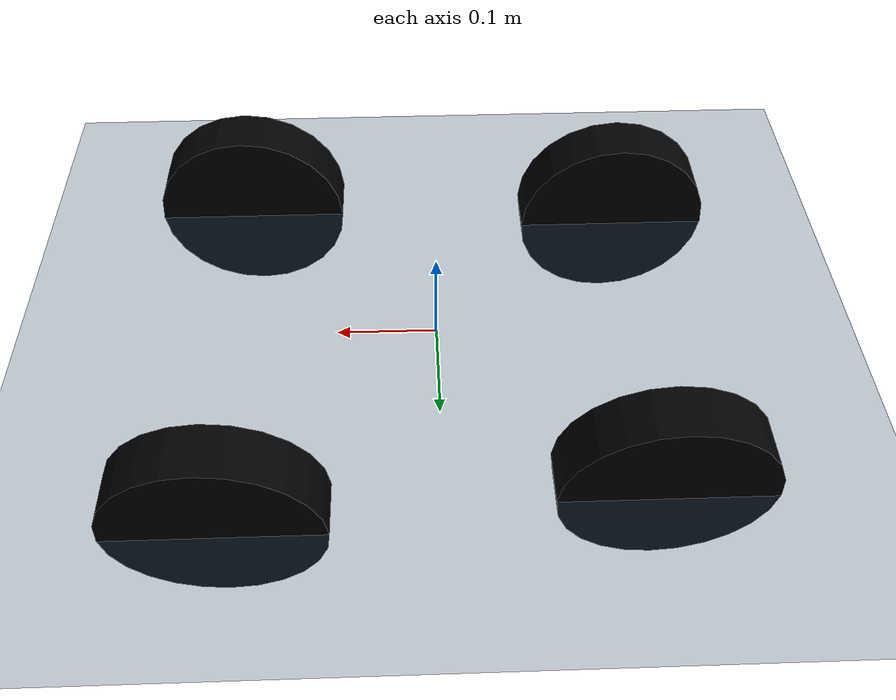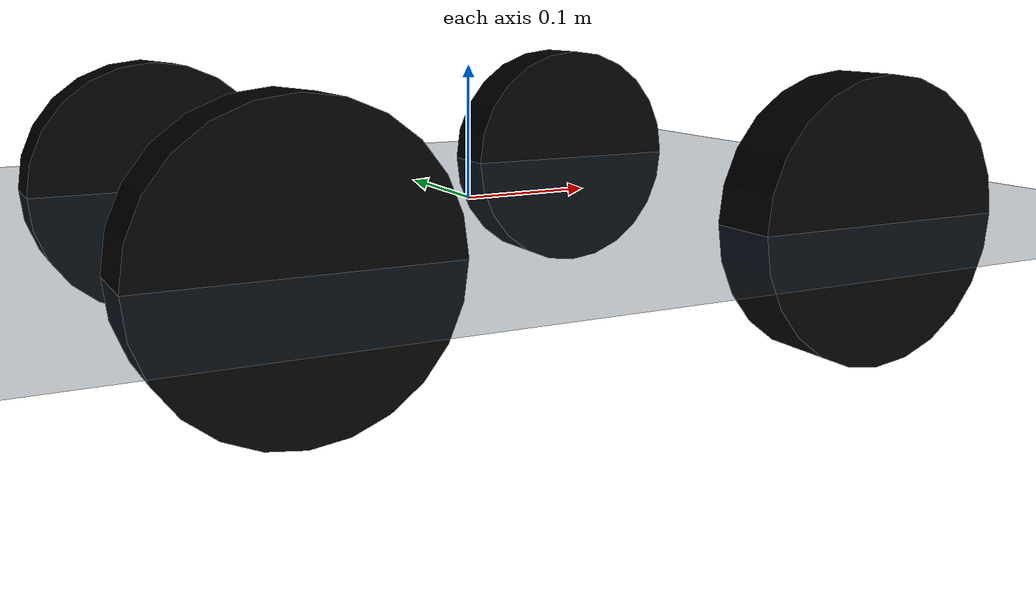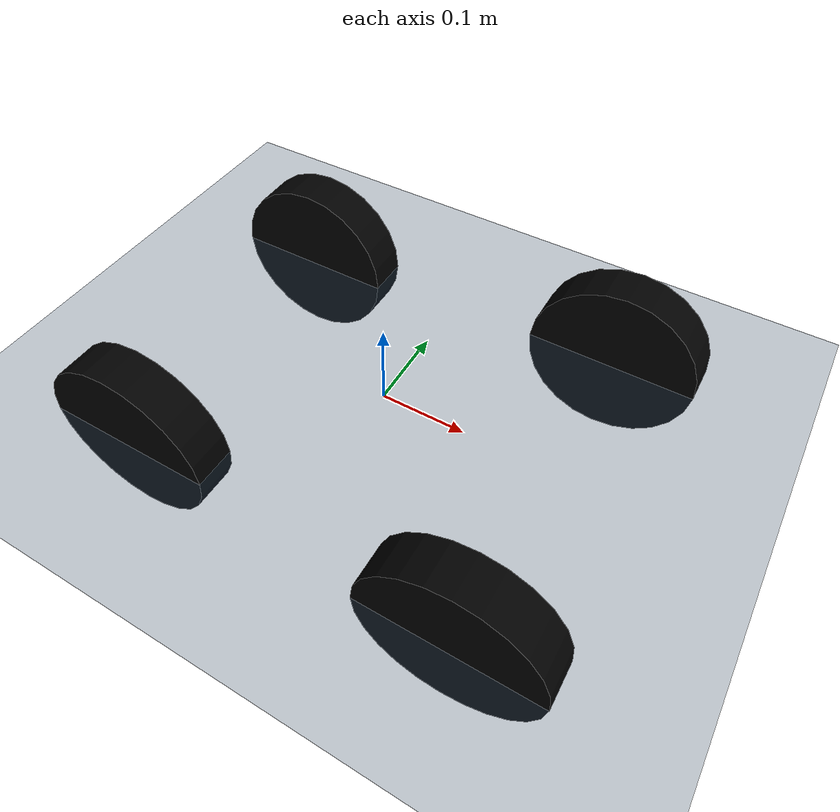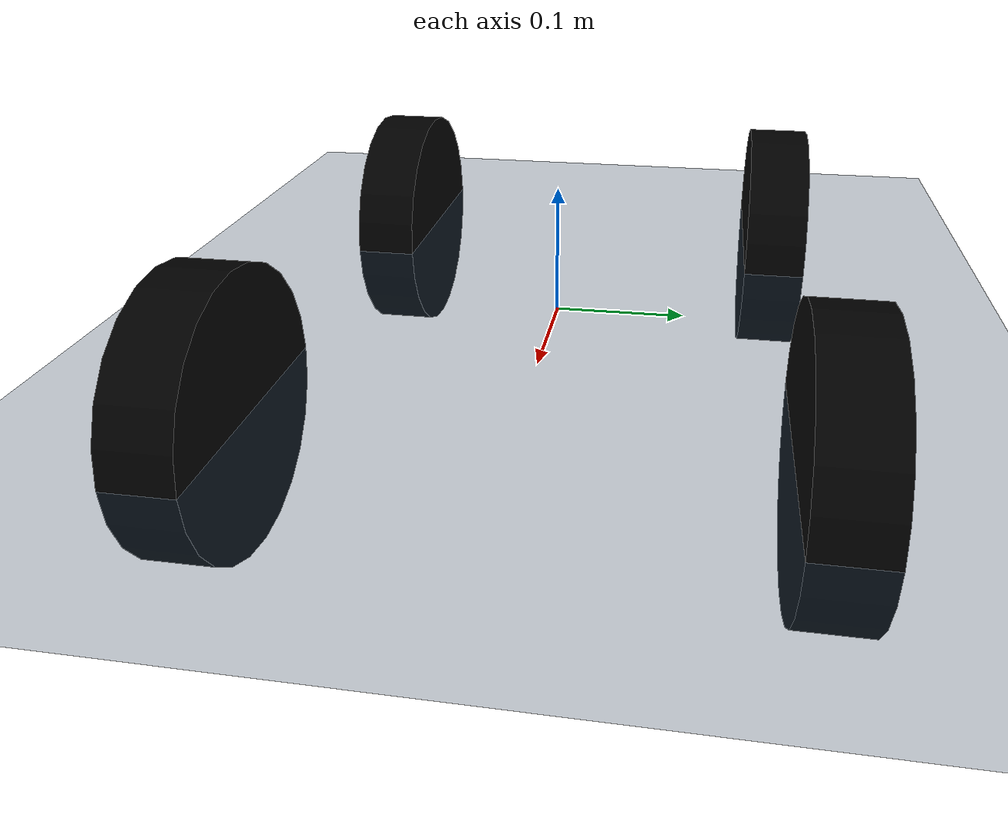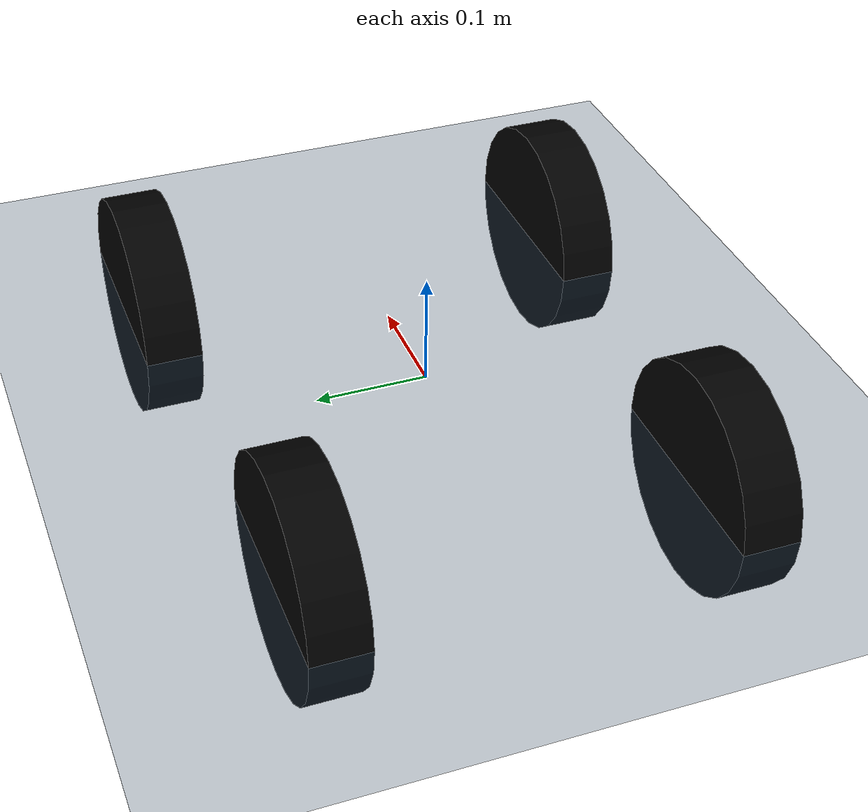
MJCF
<mujoco model="simplecar">
  <compiler angle="radian"/>
  <option gravity="0 0 -9.81"/>

  <asset>
    <texture type="skybox" builtin="gradient" rgb1="0.3 0.5 0.7" rgb2="0 0 0" width="512" height="512"/>
    <texture name="texplane" type="2d" builtin="checker" rgb1="0.2 0.3 0.4" rgb2="0.1 0.2 0.3" width="512" height="512" mark="cross" markrgb=".8 .8 .8"/>
    <material name="matplane" texture="texplane" texrepeat="1 1" texuniform="true" reflectance="0.2"/>
  </asset>

  <worldbody>
    <!-- floor -->
    <geom name="floor" pos="0 0 0" size="100 100 0.1" type="plane" material="matplane"/>

    <body name="left_hinge" pos="0.2 0 0">
      <inertial pos="0 0 0" mass="0.01" diaginertia="5e-06 5e-06 5e-06"/>
      <joint name="base_to_left_hinge" pos="0 0 0" axis="0 0 1" range="-0.5 0.5" actuatorfrcrange="-100 100"/>
      <body name="left_front_wheel" pos="0 0.2 0">
        <inertial pos="0 0 0" mass="0.3" diaginertia="0.4 0.4 0.2"/>
        <joint name="left_hinge_to_left_front_wheel" pos="0 0 0" axis="0 1 0"/>
        <geom size="0.1 0.025" quat="0.500023 0.5 0.5 -0.499977" type="cylinder" rgba="0 0 0 1"/>
      </body>
    </body>
    <body name="right_hinge" pos="0.2 0 0">
      <inertial pos="0 0 0" mass="0.01" diaginertia="5e-06 5e-06 5e-06"/>
      <joint name="base_to_right_hinge" pos="0 0 0" axis="0 0 1" range="-0.5 0.5" actuatorfrcrange="-100 100"/>
      <body name="right_front_wheel" pos="0 -0.2 0">
        <inertial pos="0 0 0" mass="0.3" diaginertia="0.4 0.4 0.2"/>
        <joint name="right_hinge_to_right_front_wheel" pos="0 0 0" axis="0 1 0"/>
        <geom size="0.1 0.025" quat="0.500023 -0.5 -0.5 -0.499977" type="cylinder" rgba="0 0 0 1"/>
      </body>
    </body>
    <body name="left_back_wheel" pos="-0.2 0.175 0">
      <inertial pos="0 0 0" mass="0.3" diaginertia="0.4 0.4 0.2"/>
      <joint name="base_to_left_back_wheel" pos="0 0 0" axis="0 1 0"/>
      <geom size="0.1 0.025" quat="0.500023 0.5 0.5 -0.499977" type="cylinder" rgba="0 0 0 1"/>
    </body>
    <body name="right_back_wheel" pos="-0.2 -0.175 0">
      <inertial pos="0 0 0" mass="0.3" diaginertia="0.4 0.4 0.2"/>
      <joint name="base_to_right_back_wheel" pos="0 0 0" axis="0 1 0"/>
      <geom size="0.1 0.025" quat="0.500023 -0.5 -0.5 -0.499977" type="cylinder" rgba="0 0 0 1"/>
    </body>
  </worldbody>
</mujoco>
